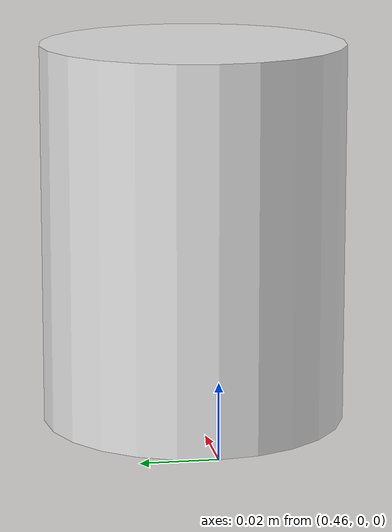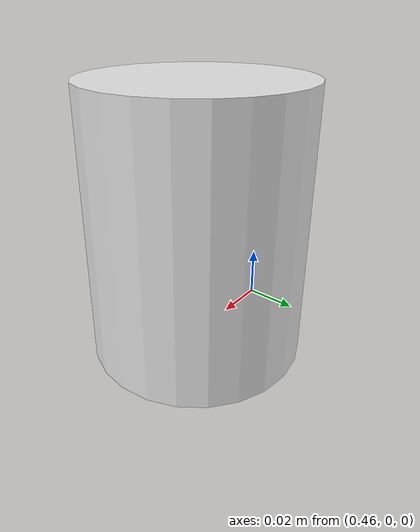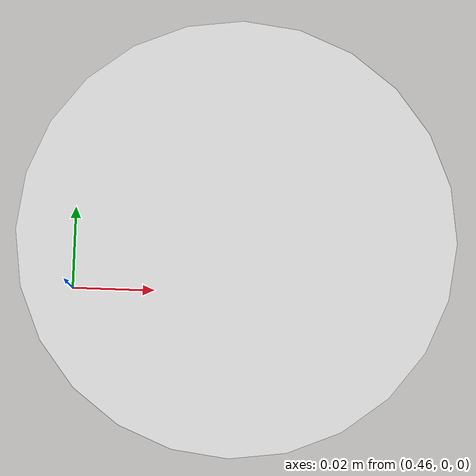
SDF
<?xml version="1.0" ?>
<sdf version="1.6">
  <model name="cup">
    <static>true</static>

    <link name="cup_link">
      <pose>0.5 0 0.05 0 0 0</pose> <!-- in front of camera -->

      <visual name="visual">
        <geometry>
          <cylinder>
            <radius>0.04</radius>
            <length>0.1</length>
          </cylinder>
        </geometry>
        <material>
          <ambient>0.9 0.9 0.9 1</ambient>
          <diffuse>0.9 0.9 0.9 1</diffuse>
        </material>
      </visual>

      <collision name="collision">
        <geometry>
          <cylinder>
            <radius>0.04</radius>
            <length>0.1</length>
          </cylinder>
        </geometry>
      </collision>
    </link>
  </model>
</sdf>
